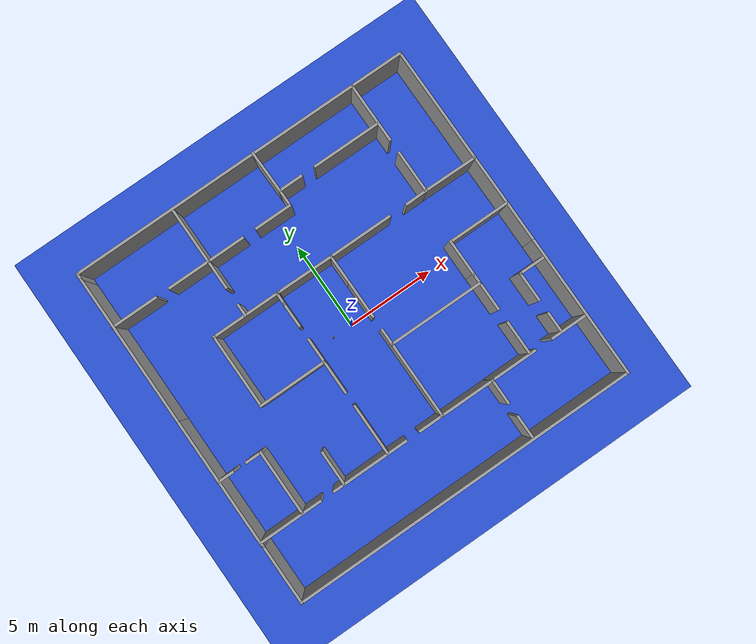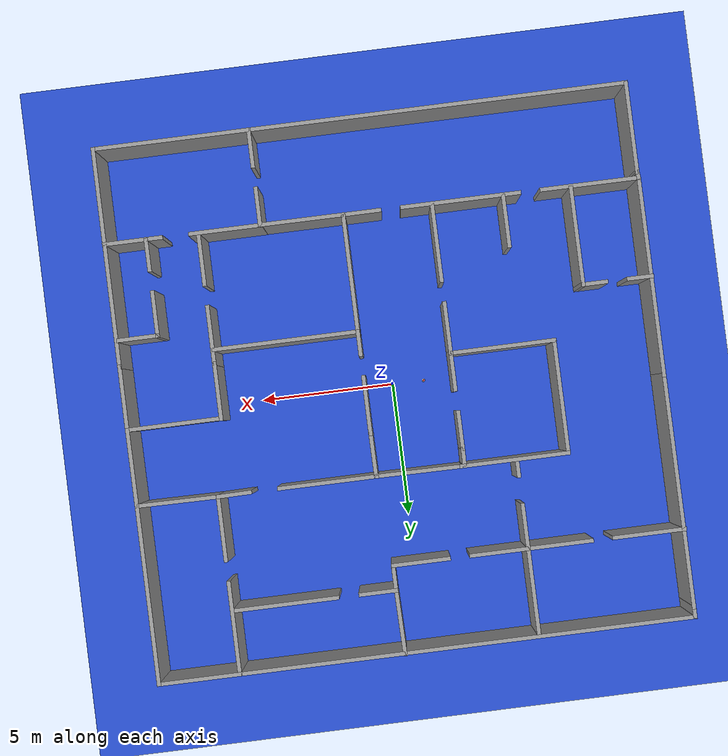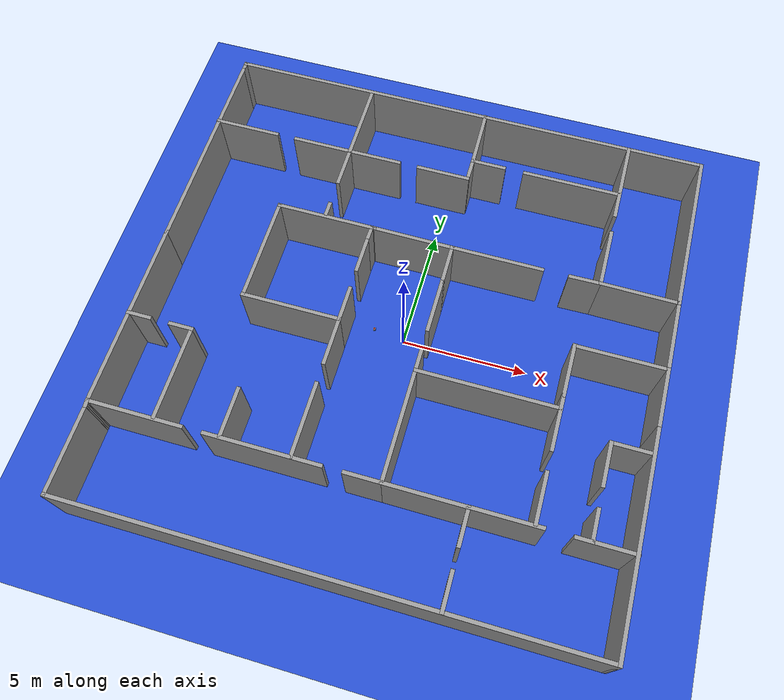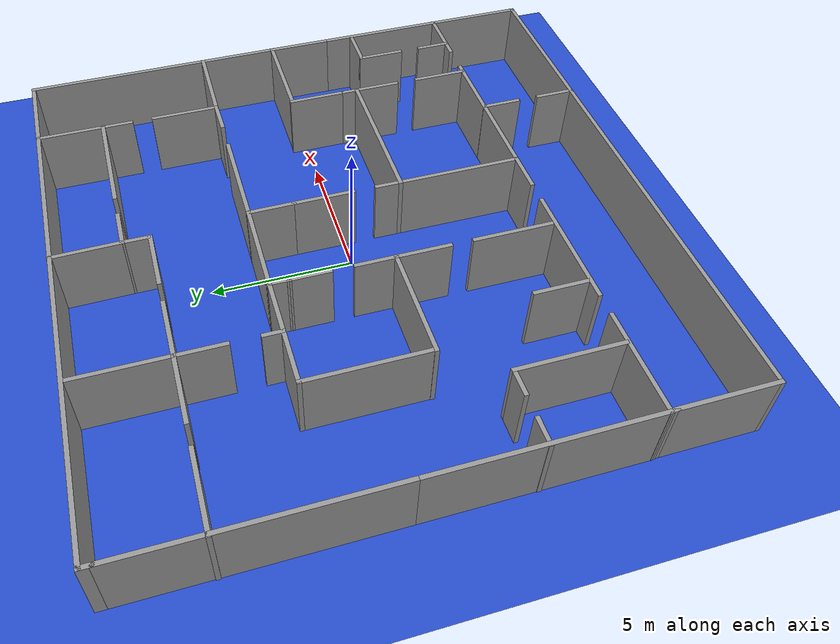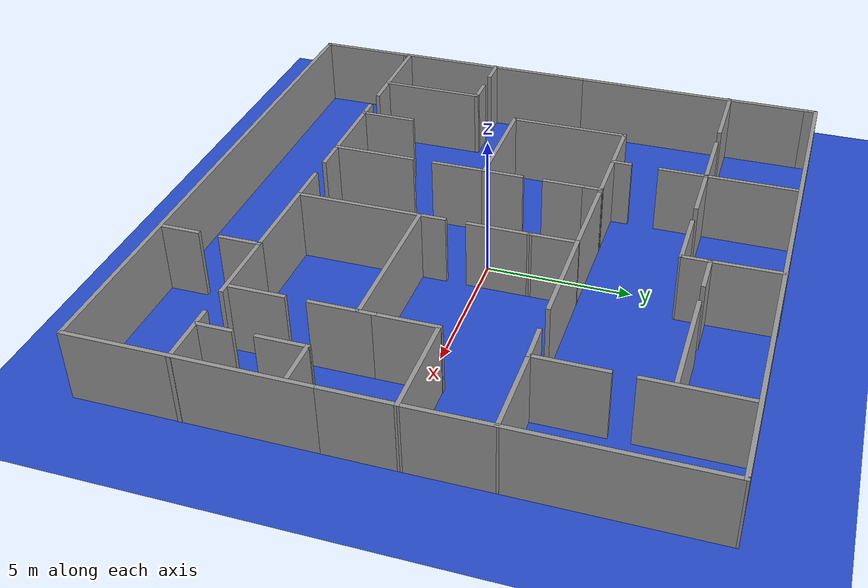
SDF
<sdf version="1.9">
 <world name="diff_drive">
  <physics name="default_physics" default="false" type="ode">
   <max_step_size>0.001</max_step_size>
   <real_time_factor>1</real_time_factor>
   <real_time_update_rate>1000</real_time_update_rate>
  </physics>
  <plugin name="ignition::gazebo::systems::Physics" filename="ignition-gazebo-physics-system"/>
  <plugin name="ignition::gazebo::systems::SceneBroadcaster" filename="ignition-gazebo-scene-broadcaster-system"/>
  <plugin name="gz::sim::systems::Sensors" filename="ignition-gazebo-sensors-system">
   <render_engine>ogre1</render_engine>
  </plugin>
  <gravity>0 0 -9.8</gravity>
  <magnetic_field>6e-06 2.3e-05 -4.2e-05</magnetic_field>
  <atmosphere type="adiabatic"/>
  <scene><ambient>0.4 0.4 0.4 1</ambient><background>0.7 0.7 0.7 1</background><shadows>true</shadows></scene>
  <model name="Untitled">
   <pose>-0.041619 -0.021097 0 0 -0 0</pose>
   <link name="Wall_101">
    <collision name="Wall_101_Collision">
     <geometry><box><size>7.5 0.15 2.5</size></box></geometry>
     <pose>0 0 1.25 0 -0 0</pose>
    </collision>
    <visual name="Wall_101_Visual">
     <pose>0 0 1.25 0 -0 0</pose>
     <geometry><box><size>7.5 0.15 2.5</size></box></geometry>
     <material>
      <script><uri>file://media/materials/scripts/gazebo.material</uri><name>Gazebo/Grey</name></script>
      <ambient>1 1 1 1</ambient>
     </material>
     <meta><layer>0</layer></meta>
    </visual>
    <pose>-9.92842 -2.70817 0 0 -0 1.5708</pose>
   </link>
   <link name="Wall_103">
    <collision name="Wall_103_Collision">
     <geometry><box><size>3.75 0.15 2.5</size></box></geometry>
     <pose>0 0 1.25 0 -0 0</pose>
    </collision>
    <visual name="Wall_103_Visual">
     <pose>0 0 1.25 0 -0 0</pose>
     <geometry><box><size>3.75 0.15 2.5</size></box></geometry>
     <material>
      <script><uri>file://media/materials/scripts/gazebo.material</uri><name>Gazebo/Grey</name></script>
      <ambient>1 1 1 1</ambient>
     </material>
     <meta><layer>0</layer></meta>
    </visual>
    <pose>-7.3963 -4.51708 0 0 -0 1.5708</pose>
   </link>
   <link name="Wall_104">
    <collision name="Wall_104_Collision">
     <geometry><box><size>1 0.15 2.5</size></box></geometry>
     <pose>0 0 1.25 0 -0 0</pose>
    </collision>
    <visual name="Wall_104_Visual">
     <pose>0 0 1.25 0 -0 0</pose>
     <geometry><box><size>1 0.15 2.5</size></box></geometry>
     <material>
      <script><uri>file://media/materials/scripts/gazebo.material</uri><name>Gazebo/Grey</name></script>
      <ambient>1 1 1 1</ambient>
     </material>
     <meta><layer>0</layer></meta>
    </visual>
    <pose>-7.8213 -2.71708 0 0 -0 3.14159</pose>
   </link>
   <link name="Wall_106">
    <collision name="Wall_106_Collision">
     <geometry><box><size>1 0.15 2.5</size></box></geometry>
     <pose>0 0 1.25 0 -0 0</pose>
    </collision>
    <visual name="Wall_106_Visual">
     <pose>0 0 1.25 0 -0 0</pose>
     <geometry><box><size>1 0.15 2.5</size></box></geometry>
     <material>
      <script><uri>file://media/materials/scripts/gazebo.material</uri><name>Gazebo/Grey</name></script>
      <ambient>1 1 1 1</ambient>
     </material>
     <meta><layer>0</layer></meta>
    </visual>
    <pose>-9.5213 -2.71708 0 0 -0 3.14159</pose>
   </link>
   <link name="Wall_110">
    <collision name="Wall_110_Collision">
     <geometry><box><size>8.75 0.15 2.5</size></box></geometry>
     <pose>0 0 1.25 0 -0 0</pose>
    </collision>
    <visual name="Wall_110_Visual">
     <pose>0 0 1.25 0 -0 0</pose>
     <geometry><box><size>8.75 0.15 2.5</size></box></geometry>
     <material>
      <script><uri>file://media/materials/scripts/gazebo.material</uri><name>Gazebo/Grey</name></script>
      <ambient>1 1 1 1</ambient>
     </material>
     <meta><layer>0</layer></meta>
    </visual>
    <pose>-9.92842 5.26683 0 0 -0 1.5708</pose>
   </link>
   <link name="Wall_113">
    <collision name="Wall_113_Collision">
     <geometry><box><size>0.5 0.15 2.5</size></box></geometry>
     <pose>0 0 1.25 0 -0 0</pose>
    </collision>
    <visual name="Wall_113_Visual">
     <pose>0 0 1.25 0 -0 0</pose>
     <geometry><box><size>0.5 0.15 2.5</size></box></geometry>
     <material>
      <script><uri>file://media/materials/scripts/gazebo.material</uri><name>Gazebo/Grey</name></script>
      <ambient>1 1 1 1</ambient>
     </material>
     <meta><layer>0</layer></meta>
    </visual>
    <pose>-9.92842 9.74183 0 0 -0 1.5708</pose>
   </link>
   <link name="Wall_115">
    <collision name="Wall_115_Collision">
     <geometry><box><size>20 0.15 2.5</size></box></geometry>
     <pose>0 0 1.25 0 -0 0</pose>
    </collision>
    <visual name="Wall_115_Visual">
     <pose>0 0 1.25 0 -0 0</pose>
     <geometry><box><size>20 0.15 2.5</size></box></geometry>
     <material>
      <script><uri>file://media/materials/scripts/gazebo.material</uri><name>Gazebo/Grey</name></script>
      <ambient>1 1 1 1</ambient>
     </material>
     <meta><layer>0</layer></meta>
    </visual>
    <pose>-0.003417 9.91683 0 0 -0 0</pose>
   </link>
   <link name="Wall_116">
    <collision name="Wall_116_Collision">
     <geometry><box><size>6.73451 0.15 2.5</size></box></geometry>
     <pose>0 0 1.25 0 -0 0</pose>
    </collision>
    <visual name="Wall_116_Visual">
     <pose>0 0 1.25 0 -0 0</pose>
     <geometry><box><size>6.73451 0.15 2.5</size></box></geometry>
     <material>
      <script><uri>file://media/materials/scripts/gazebo.material</uri><name>Gazebo/Grey</name></script>
      <ambient>1 1 1 1</ambient>
     </material>
     <meta><layer>0</layer></meta>
    </visual>
    <pose>9.92733 6.62458 0 0 -0 -1.56905</pose>
   </link>
   <link name="Wall_120">
    <collision name="Wall_120_Collision">
     <geometry><box><size>3.5 0.15 2.5</size></box></geometry>
     <pose>0 0 1.25 0 -0 0</pose>
    </collision>
    <visual name="Wall_120_Visual">
     <pose>0 0 1.25 0 -0 0</pose>
     <geometry><box><size>3.5 0.15 2.5</size></box></geometry>
     <material>
      <script><uri>file://media/materials/scripts/gazebo.material</uri><name>Gazebo/Grey</name></script>
      <ambient>1 1 1 1</ambient>
     </material>
     <meta><layer>0</layer></meta>
    </visual>
    <pose>6.92773 8.23568 0 0 -0 -1.5708</pose>
   </link>
   <link name="Wall_122">
    <collision name="Wall_122_Collision">
     <geometry><box><size>2.5 0.15 2.5</size></box></geometry>
     <pose>0 0 1.25 0 -0 0</pose>
    </collision>
    <visual name="Wall_122_Visual">
     <pose>0 0 1.25 0 -0 0</pose>
     <geometry><box><size>2.5 0.15 2.5</size></box></geometry>
     <material>
      <script><uri>file://media/materials/scripts/gazebo.material</uri><name>Gazebo/Grey</name></script>
      <ambient>1 1 1 1</ambient>
     </material>
     <meta><layer>0</layer></meta>
    </visual>
    <pose>6.92773 4.53568 0 0 -0 -1.5708</pose>
   </link>
   <link name="Wall_125">
    <collision name="Wall_125_Collision">
     <geometry><box><size>2.75 0.15 2.5</size></box></geometry>
     <pose>0 0 1.25 0 -0 0</pose>
    </collision>
    <visual name="Wall_125_Visual">
     <pose>0 0 1.25 0 -0 0</pose>
     <geometry><box><size>2.75 0.15 2.5</size></box></geometry>
     <material>
      <script><uri>file://media/materials/scripts/gazebo.material</uri><name>Gazebo/Grey</name></script>
      <ambient>1 1 1 1</ambient>
     </material>
     <meta><layer>0</layer></meta>
    </visual>
    <pose>-8.65702 6.67293 0 0 -0 0</pose>
   </link>
   <link name="Wall_127">
    <collision name="Wall_127_Collision">
     <geometry><box><size>2.5 0.15 2.5</size></box></geometry>
     <pose>0 0 1.25 0 -0 0</pose>
    </collision>
    <visual name="Wall_127_Visual">
     <pose>0 0 1.25 0 -0 0</pose>
     <geometry><box><size>2.5 0.15 2.5</size></box></geometry>
     <material>
      <script><uri>file://media/materials/scripts/gazebo.material</uri><name>Gazebo/Grey</name></script>
      <ambient>1 1 1 1</ambient>
     </material>
     <meta><layer>0</layer></meta>
    </visual>
    <pose>-5.33202 6.67293 0 0 -0 0</pose>
   </link>
   <link name="Wall_128">
    <collision name="Wall_128_Collision">
     <geometry><box><size>3.25 0.15 2.5</size></box></geometry>
     <pose>0 0 1.25 0 -0 0</pose>
    </collision>
    <visual name="Wall_128_Visual">
     <pose>0 0 1.25 0 -0 0</pose>
     <geometry><box><size>3.25 0.15 2.5</size></box></geometry>
     <material>
      <script><uri>file://media/materials/scripts/gazebo.material</uri><name>Gazebo/Grey</name></script>
      <ambient>1 1 1 1</ambient>
     </material>
     <meta><layer>0</layer></meta>
    </visual>
    <pose>-4.15702 8.22292 0 0 -0 1.5708</pose>
   </link>
   <link name="Wall_130">
    <collision name="Wall_130_Collision">
     <geometry><box><size>4 0.15 2.5</size></box></geometry>
     <pose>0 0 1.25 0 -0 0</pose>
    </collision>
    <visual name="Wall_130_Visual">
     <pose>0 0 1.25 0 -0 0</pose>
     <geometry><box><size>4 0.15 2.5</size></box></geometry>
     <material>
      <script><uri>file://media/materials/scripts/gazebo.material</uri><name>Gazebo/Grey</name></script>
      <ambient>1 1 1 1</ambient>
     </material>
     <meta><layer>0</layer></meta>
    </visual>
    <pose>4.96545 7.58545 0 0 -0 3.14159</pose>
   </link>
   <link name="Wall_132">
    <collision name="Wall_132_Collision">
     <geometry><box><size>1.46033 0.15 2.5</size></box></geometry>
     <pose>0 0 1.25 0 -0 0</pose>
    </collision>
    <visual name="Wall_132_Visual">
     <pose>0 0 1.25 0 -0 0</pose>
     <geometry><box><size>1.46033 0.15 2.5</size></box></geometry>
     <material>
      <script><uri>file://media/materials/scripts/gazebo.material</uri><name>Gazebo/Grey</name></script>
      <ambient>1 1 1 1</ambient>
     </material>
     <meta><layer>0</layer></meta>
    </visual>
    <pose>1.50869 7.58545 0 0 -0 3.14159</pose>
   </link>
   <link name="Wall_134">
    <collision name="Wall_134_Collision">
     <geometry><box><size>2.50015 0.15 2.5</size></box></geometry>
     <pose>0 0 1.25 0 -0 0</pose>
    </collision>
    <visual name="Wall_134_Visual">
     <pose>0 0 1.25 0 -0 0</pose>
     <geometry><box><size>2.50015 0.15 2.5</size></box></geometry>
     <material>
      <script><uri>file://media/materials/scripts/gazebo.material</uri><name>Gazebo/Grey</name></script>
      <ambient>1 1 1 1</ambient>
     </material>
     <meta><layer>0</layer></meta>
    </visual>
    <pose>0.833691 8.76045 0 0 -0 1.58768</pose>
   </link>
   <link name="Wall_137">
    <collision name="Wall_137_Collision">
     <geometry><box><size>2.25 0.15 2.5</size></box></geometry>
     <pose>0 0 1.25 0 -0 0</pose>
    </collision>
    <visual name="Wall_137_Visual">
     <pose>0 0 1.25 0 -0 0</pose>
     <geometry><box><size>2.25 0.15 2.5</size></box></geometry>
     <material>
      <script><uri>file://media/materials/scripts/gazebo.material</uri><name>Gazebo/Grey</name></script>
      <ambient>1 1 1 1</ambient>
     </material>
     <meta><layer>0</layer></meta>
    </visual>
    <pose>-3.10702 6.67293 0 0 -0 0</pose>
   </link>
   <link name="Wall_139">
    <collision name="Wall_139_Collision">
     <geometry><box><size>2.2 0.15 2.5</size></box></geometry>
     <pose>0 0 1.25 0 -0 0</pose>
    </collision>
    <visual name="Wall_139_Visual">
     <pose>0 0 1.25 0 -0 0</pose>
     <geometry><box><size>2.2 0.15 2.5</size></box></geometry>
     <material>
      <script><uri>file://media/materials/scripts/gazebo.material</uri><name>Gazebo/Grey</name></script>
      <ambient>1 1 1 1</ambient>
     </material>
     <meta><layer>0</layer></meta>
    </visual>
    <pose>-0.182024 6.67293 0 0 -0 0</pose>
   </link>
   <link name="Wall_142">
    <collision name="Wall_142_Collision">
     <geometry><box><size>1 0.15 2.5</size></box></geometry>
     <pose>0 0 1.25 0 -0 0</pose>
    </collision>
    <visual name="Wall_142_Visual">
     <pose>0 0 1.25 0 -0 0</pose>
     <geometry><box><size>1 0.15 2.5</size></box></geometry>
     <material>
      <script><uri>file://media/materials/scripts/gazebo.material</uri><name>Gazebo/Grey</name></script>
      <ambient>1 1 1 1</ambient>
     </material>
     <meta><layer>0</layer></meta>
    </visual>
    <pose>0.853529 7.16045 0 0 -0 -1.5708</pose>
   </link>
   <link name="Wall_144">
    <collision name="Wall_144_Collision">
     <geometry><box><size>1.75 0.15 2.5</size></box></geometry>
     <pose>0 0 1.25 0 -0 0</pose>
    </collision>
    <visual name="Wall_144_Visual">
     <pose>0 0 1.25 0 -0 0</pose>
     <geometry><box><size>1.75 0.15 2.5</size></box></geometry>
     <material>
      <script><uri>file://media/materials/scripts/gazebo.material</uri><name>Gazebo/Grey</name></script>
      <ambient>1 1 1 1</ambient>
     </material>
     <meta><layer>0</layer></meta>
    </visual>
    <pose>-4.15702 5.87292 0 0 -0 -1.5708</pose>
   </link>
   <link name="Wall_146">
    <collision name="Wall_146_Collision">
     <geometry><box><size>0.75 0.15 2.5</size></box></geometry>
     <pose>0 0 1.25 0 -0 0</pose>
    </collision>
    <visual name="Wall_146_Visual">
     <pose>0 0 1.25 0 -0 0</pose>
     <geometry><box><size>0.75 0.15 2.5</size></box></geometry>
     <material>
      <script><uri>file://media/materials/scripts/gazebo.material</uri><name>Gazebo/Grey</name></script>
      <ambient>1 1 1 1</ambient>
     </material>
     <meta><layer>0</layer></meta>
    </visual>
    <pose>-4.15702 3.67292 0 0 -0 -1.5708</pose>
   </link>
   <link name="Wall_148">
    <collision name="Wall_148_Collision">
     <geometry><box><size>3.75 0.15 2.5</size></box></geometry>
     <pose>0 0 1.25 0 -0 0</pose>
    </collision>
    <visual name="Wall_148_Visual">
     <pose>0 0 1.25 0 -0 0</pose>
     <geometry><box><size>3.75 0.15 2.5</size></box></geometry>
     <material>
      <script><uri>file://media/materials/scripts/gazebo.material</uri><name>Gazebo/Grey</name></script>
      <ambient>1 1 1 1</ambient>
     </material>
     <meta><layer>0</layer></meta>
    </visual>
    <pose>2.84858 3.34383 0 0 -0 0</pose>
   </link>
   <link name="Wall_150">
    <collision name="Wall_150_Collision">
     <geometry><box><size>1.32927 0.15 2.5</size></box></geometry>
     <pose>0 0 1.25 0 -0 0</pose>
    </collision>
    <visual name="Wall_150_Visual">
     <pose>0 0 1.25 0 -0 0</pose>
     <geometry><box><size>1.32927 0.15 2.5</size></box></geometry>
     <material>
      <script><uri>file://media/materials/scripts/gazebo.material</uri><name>Gazebo/Grey</name></script>
      <ambient>1 1 1 1</ambient>
     </material>
     <meta><layer>0</layer></meta>
    </visual>
    <pose>6.33816 3.35225 0 0 -0 0.014288</pose>
   </link>
   <link name="Wall_151">
    <collision name="Wall_151_Collision">
     <geometry><box><size>3.15549 0.15 2.5</size></box></geometry>
     <pose>0 0 1.25 0 -0 0</pose>
    </collision>
    <visual name="Wall_151_Visual">
     <pose>0 0 1.25 0 -0 0</pose>
     <geometry><box><size>3.15549 0.15 2.5</size></box></geometry>
     <material>
      <script><uri>file://media/materials/scripts/gazebo.material</uri><name>Gazebo/Grey</name></script>
      <ambient>1 1 1 1</ambient>
     </material>
     <meta><layer>0</layer></meta>
    </visual>
    <pose>8.43041 3.3465 0 0 -0 -0.009432</pose>
   </link>
   <link name="Wall_25">
    <collision name="Wall_25_Collision">
     <geometry><box><size>20 0.15 2.5</size></box></geometry>
     <pose>0 0 1.25 0 -0 0</pose>
    </collision>
    <visual name="Wall_25_Visual">
     <pose>0 0 1.25 0 -0 0</pose>
     <geometry><box><size>20 0.15 2.5</size></box></geometry>
     <material>
      <script><uri>file://media/materials/scripts/gazebo.material</uri><name>Gazebo/Grey</name></script>
      <ambient>1 1 1 1</ambient>
     </material>
     <meta><layer>0</layer></meta>
    </visual>
    <pose>0.020014 -9.93661 0 0 -0 0</pose>
   </link>
   <link name="Wall_27">
    <collision name="Wall_27_Collision">
     <geometry><box><size>8.25 0.15 2.5</size></box></geometry>
     <pose>0 0 1.25 0 -0 0</pose>
    </collision>
    <visual name="Wall_27_Visual">
     <pose>0 0 1.25 0 -0 0</pose>
     <geometry><box><size>8.25 0.15 2.5</size></box></geometry>
     <material>
      <script><uri>file://media/materials/scripts/gazebo.material</uri><name>Gazebo/Grey</name></script>
      <ambient>1 1 1 1</ambient>
     </material>
     <meta><layer>0</layer></meta>
    </visual>
    <pose>9.94501 -5.88661 0 0 -0 1.5708</pose>
   </link>
   <link name="Wall_29">
    <collision name="Wall_29_Collision">
     <geometry><box><size>1.5 0.15 2.5</size></box></geometry>
     <pose>0 0 1.25 0 -0 0</pose>
    </collision>
    <visual name="Wall_29_Visual">
     <pose>0 0 1.25 0 -0 0</pose>
     <geometry><box><size>1.5 0.15 2.5</size></box></geometry>
     <material>
      <script><uri>file://media/materials/scripts/gazebo.material</uri><name>Gazebo/Grey</name></script>
      <ambient>1 1 1 1</ambient>
     </material>
     <meta><layer>0</layer></meta>
    </visual>
    <pose>4.15702 -9.26161 0 0 -0 1.5708</pose>
   </link>
   <link name="Wall_31">
    <collision name="Wall_31_Collision">
     <geometry><box><size>1.49705 0.15 2.5</size></box></geometry>
     <pose>0 0 1.25 0 -0 0</pose>
    </collision>
    <visual name="Wall_31_Visual">
     <pose>0 0 1.25 0 -0 0</pose>
     <geometry><box><size>1.49705 0.15 2.5</size></box></geometry>
     <material>
      <script><uri>file://media/materials/scripts/gazebo.material</uri><name>Gazebo/Grey</name></script>
      <ambient>1 1 1 1</ambient>
     </material>
     <meta><layer>0</layer></meta>
    </visual>
    <pose>4.1585 -7.06309 0 0 -0 1.5686</pose>
   </link>
   <link name="Wall_33">
    <collision name="Wall_33_Collision">
     <geometry><box><size>2.75 0.15 2.5</size></box></geometry>
     <pose>0 0 1.25 0 -0 0</pose>
    </collision>
    <visual name="Wall_33_Visual">
     <pose>0 0 1.25 0 -0 0</pose>
     <geometry><box><size>2.75 0.15 2.5</size></box></geometry>
     <material>
      <script><uri>file://media/materials/scripts/gazebo.material</uri><name>Gazebo/Grey</name></script>
      <ambient>1 1 1 1</ambient>
     </material>
     <meta><layer>0</layer></meta>
    </visual>
    <pose>5.45129 -6.38087 0 0 -0 0</pose>
   </link>
   <link name="Wall_35">
    <collision name="Wall_35_Collision">
     <geometry><box><size>2.25 0.15 2.5</size></box></geometry>
     <pose>0 0 1.25 0 -0 0</pose>
    </collision>
    <visual name="Wall_35_Visual">
     <pose>0 0 1.25 0 -0 0</pose>
     <geometry><box><size>2.25 0.15 2.5</size></box></geometry>
     <material>
      <script><uri>file://media/materials/scripts/gazebo.material</uri><name>Gazebo/Grey</name></script>
      <ambient>1 1 1 1</ambient>
     </material>
     <meta><layer>0</layer></meta>
    </visual>
    <pose>8.90702 -6.38661 0 0 -0 0</pose>
   </link>
   <link name="Wall_37">
    <collision name="Wall_37_Collision">
     <geometry><box><size>1.25 0.15 2.5</size></box></geometry>
     <pose>0 0 1.25 0 -0 0</pose>
    </collision>
    <visual name="Wall_37_Visual">
     <pose>0 0 1.25 0 -0 0</pose>
     <geometry><box><size>1.25 0.15 2.5</size></box></geometry>
     <material>
      <script><uri>file://media/materials/scripts/gazebo.material</uri><name>Gazebo/Grey</name></script>
      <ambient>1 1 1 1</ambient>
     </material>
     <meta><layer>0</layer></meta>
    </visual>
    <pose>8.41023 -5.80349 0 0 -0 1.5708</pose>
   </link>
   <link name="Wall_39">
    <collision name="Wall_39_Collision">
     <geometry><box><size>1.75 0.15 2.5</size></box></geometry>
     <pose>0 0 1.25 0 -0 0</pose>
    </collision>
    <visual name="Wall_39_Visual">
     <pose>0 0 1.25 0 -0 0</pose>
     <geometry><box><size>1.75 0.15 2.5</size></box></geometry>
     <material>
      <script><uri>file://media/materials/scripts/gazebo.material</uri><name>Gazebo/Grey</name></script>
      <ambient>1 1 1 1</ambient>
     </material>
     <meta><layer>0</layer></meta>
    </visual>
    <pose>8.41023 -3.60349 0 0 -0 1.5708</pose>
   </link>
   <link name="Wall_40">
    <collision name="Wall_40_Collision">
     <geometry><box><size>1.6 0.15 2.5</size></box></geometry>
     <pose>0 0 1.25 0 -0 0</pose>
    </collision>
    <visual name="Wall_40_Visual">
     <pose>0 0 1.25 0 -0 0</pose>
     <geometry><box><size>1.6 0.15 2.5</size></box></geometry>
     <material>
      <script><uri>file://media/materials/scripts/gazebo.material</uri><name>Gazebo/Grey</name></script>
      <ambient>1 1 1 1</ambient>
     </material>
     <meta><layer>0</layer></meta>
    </visual>
    <pose>9.13523 -2.80349 0 0 -0 0</pose>
   </link>
   <link name="Wall_42">
    <collision name="Wall_42_Collision">
     <geometry><box><size>2 0.15 2.5</size></box></geometry>
     <pose>0 0 1.25 0 -0 0</pose>
    </collision>
    <visual name="Wall_42_Visual">
     <pose>0 0 1.25 0 -0 0</pose>
     <geometry><box><size>2 0.15 2.5</size></box></geometry>
     <material>
      <script><uri>file://media/materials/scripts/gazebo.material</uri><name>Gazebo/Grey</name></script>
      <ambient>1 1 1 1</ambient>
     </material>
     <meta><layer>0</layer></meta>
    </visual>
    <pose>6.46332 -5.39614 0 0 -0 1.5708</pose>
   </link>
   <link name="Wall_44">
    <collision name="Wall_44_Collision">
     <geometry><box><size>2.25 0.15 2.5</size></box></geometry>
     <pose>0 0 1.25 0 -0 0</pose>
    </collision>
    <visual name="Wall_44_Visual">
     <pose>0 0 1.25 0 -0 0</pose>
     <geometry><box><size>2.25 0.15 2.5</size></box></geometry>
     <material>
      <script><uri>file://media/materials/scripts/gazebo.material</uri><name>Gazebo/Grey</name></script>
      <ambient>1 1 1 1</ambient>
     </material>
     <meta><layer>0</layer></meta>
    </visual>
    <pose>6.46332 -2.57114 0 0 -0 1.5708</pose>
   </link>
   <link name="Wall_50">
    <collision name="Wall_50_Collision">
     <geometry><box><size>5.5 0.15 2.5</size></box></geometry>
     <pose>0 0 1.25 0 -0 0</pose>
    </collision>
    <visual name="Wall_50_Visual">
     <pose>0 0 1.25 0 -0 0</pose>
     <geometry><box><size>5.5 0.15 2.5</size></box></geometry>
     <material>
      <script><uri>file://media/materials/scripts/gazebo.material</uri><name>Gazebo/Grey</name></script>
      <ambient>1 1 1 1</ambient>
     </material>
     <meta><layer>0</layer></meta>
    </visual>
    <pose>3.74658 -2.03317 0 0 -0 3.14159</pose>
   </link>
   <link name="Wall_51">
    <collision name="Wall_51_Collision">
     <geometry><box><size>4.5 0.15 2.5</size></box></geometry>
     <pose>0 0 1.25 0 -0 0</pose>
    </collision>
    <visual name="Wall_51_Visual">
     <pose>0 0 1.25 0 -0 0</pose>
     <geometry><box><size>4.5 0.15 2.5</size></box></geometry>
     <material>
      <script><uri>file://media/materials/scripts/gazebo.material</uri><name>Gazebo/Grey</name></script>
      <ambient>1 1 1 1</ambient>
     </material>
     <meta><layer>0</layer></meta>
    </visual>
    <pose>1.07158 -4.20817 0 0 -0 -1.5708</pose>
   </link>
   <link name="Wall_52">
    <collision name="Wall_52_Collision">
     <geometry><box><size>3.23841 0.15 2.5</size></box></geometry>
     <pose>0 0 1.25 0 -0 0</pose>
    </collision>
    <visual name="Wall_52_Visual">
     <pose>0 0 1.25 0 -0 0</pose>
     <geometry><box><size>3.23841 0.15 2.5</size></box></geometry>
     <material>
      <script><uri>file://media/materials/scripts/gazebo.material</uri><name>Gazebo/Grey</name></script>
      <ambient>1 1 1 1</ambient>
     </material>
     <meta><layer>0</layer></meta>
    </visual>
    <pose>2.61578 -6.38637 0 0 -0 -0.002071</pose>
   </link>
   <link name="Wall_54">
    <collision name="Wall_54_Collision">
     <geometry><box><size>2.5 0.15 2.5</size></box></geometry>
     <pose>0 0 1.25 0 -0 0</pose>
    </collision>
    <visual name="Wall_54_Visual">
     <pose>0 0 1.25 0 -0 0</pose>
     <geometry><box><size>2.5 0.15 2.5</size></box></geometry>
     <material>
      <script><uri>file://media/materials/scripts/gazebo.material</uri><name>Gazebo/Grey</name></script>
      <ambient>1 1 1 1</ambient>
     </material>
     <meta><layer>0</layer></meta>
    </visual>
    <pose>9.94501 -0.661611 0 0 -0 1.5708</pose>
   </link>
   <link name="Wall_55">
    <collision name="Wall_55_Collision">
     <geometry><box><size>3.5 0.15 2.5</size></box></geometry>
     <pose>0 0 1.25 0 -0 0</pose>
    </collision>
    <visual name="Wall_55_Visual">
     <pose>0 0 1.25 0 -0 0</pose>
     <geometry><box><size>3.5 0.15 2.5</size></box></geometry>
     <material>
      <script><uri>file://media/materials/scripts/gazebo.material</uri><name>Gazebo/Grey</name></script>
      <ambient>1 1 1 1</ambient>
     </material>
     <meta><layer>0</layer></meta>
    </visual>
    <pose>8.27001 0.513389 0 0 -0 3.14159</pose>
   </link>
   <link name="Wall_58">
    <collision name="Wall_58_Collision">
     <geometry><box><size>2.2 0.15 2.5</size></box></geometry>
     <pose>0 0 1.25 0 -0 0</pose>
    </collision>
    <visual name="Wall_58_Visual">
     <pose>0 0 1.25 0 -0 0</pose>
     <geometry><box><size>2.2 0.15 2.5</size></box></geometry>
     <material>
      <script><uri>file://media/materials/scripts/gazebo.material</uri><name>Gazebo/Grey</name></script>
      <ambient>1 1 1 1</ambient>
     </material>
     <meta><layer>0</layer></meta>
    </visual>
    <pose>6.46332 -0.496143 0 0 -0 1.5708</pose>
   </link>
   <link name="Wall_60">
    <collision name="Wall_60_Collision">
     <geometry><box><size>1.5 0.15 2.5</size></box></geometry>
     <pose>0 0 1.25 0 -0 0</pose>
    </collision>
    <visual name="Wall_60_Visual">
     <pose>0 0 1.25 0 -0 0</pose>
     <geometry><box><size>1.5 0.15 2.5</size></box></geometry>
     <material>
      <script><uri>file://media/materials/scripts/gazebo.material</uri><name>Gazebo/Grey</name></script>
      <ambient>1 1 1 1</ambient>
     </material>
     <meta><layer>0</layer></meta>
    </visual>
    <pose>0.396583 -6.38317 0 0 -0 3.14159</pose>
   </link>
   <link name="Wall_62">
    <collision name="Wall_62_Collision">
     <geometry><box><size>4.5 0.15 2.5</size></box></geometry>
     <pose>0 0 1.25 0 -0 0</pose>
    </collision>
    <visual name="Wall_62_Visual">
     <pose>0 0 1.25 0 -0 0</pose>
     <geometry><box><size>4.5 0.15 2.5</size></box></geometry>
     <material>
      <script><uri>file://media/materials/scripts/gazebo.material</uri><name>Gazebo/Grey</name></script>
      <ambient>1 1 1 1</ambient>
     </material>
     <meta><layer>0</layer></meta>
    </visual>
    <pose>-3.30342 -6.38317 0 0 -0 3.14159</pose>
   </link>
   <link name="Wall_64">
    <collision name="Wall_64_Collision">
     <geometry><box><size>1 0.15 2.5</size></box></geometry>
     <pose>0 0 1.25 0 -0 0</pose>
    </collision>
    <visual name="Wall_64_Visual">
     <pose>0 0 1.25 0 -0 0</pose>
     <geometry><box><size>1 0.15 2.5</size></box></geometry>
     <material>
      <script><uri>file://media/materials/scripts/gazebo.material</uri><name>Gazebo/Grey</name></script>
      <ambient>1 1 1 1</ambient>
     </material>
     <meta><layer>0</layer></meta>
    </visual>
    <pose>1.07158 -1.60817 0 0 -0 1.5708</pose>
   </link>
   <link name="Wall_67">
    <collision name="Wall_67_Collision">
     <geometry><box><size>2.25 0.15 2.5</size></box></geometry>
     <pose>0 0 1.25 0 -0 0</pose>
    </collision>
    <visual name="Wall_67_Visual">
     <pose>0 0 1.25 0 -0 0</pose>
     <geometry><box><size>2.25 0.15 2.5</size></box></geometry>
     <material>
      <script><uri>file://media/materials/scripts/gazebo.material</uri><name>Gazebo/Grey</name></script>
      <ambient>1 1 1 1</ambient>
     </material>
     <meta><layer>0</layer></meta>
    </visual>
    <pose>1.07158 0.716827 0 0 -0 1.5708</pose>
   </link>
   <link name="Wall_68">
    <collision name="Wall_68_Collision">
     <geometry><box><size>1.72717 0.15 2.5</size></box></geometry>
     <pose>0 0 1.25 0 -0 0</pose>
    </collision>
    <visual name="Wall_68_Visual">
     <pose>0 0 1.25 0 -0 0</pose>
     <geometry><box><size>1.72717 0.15 2.5</size></box></geometry>
     <material>
      <script><uri>file://media/materials/scripts/gazebo.material</uri><name>Gazebo/Grey</name></script>
      <ambient>1 1 1 1</ambient>
     </material>
     <meta><layer>0</layer></meta>
    </visual>
    <pose>1.06583 2.55533 0 0 -0 1.57809</pose>
   </link>
   <link name="Wall_70">
    <collision name="Wall_70_Collision">
     <geometry><box><size>2.96904 0.15 2.5</size></box></geometry>
     <pose>0 0 1.25 0 -0 0</pose>
    </collision>
    <visual name="Wall_70_Visual">
     <pose>0 0 1.25 0 -0 0</pose>
     <geometry><box><size>2.96904 0.15 2.5</size></box></geometry>
     <material>
      <script><uri>file://media/materials/scripts/gazebo.material</uri><name>Gazebo/Grey</name></script>
      <ambient>1 1 1 1</ambient>
     </material>
     <meta><layer>0</layer></meta>
    </visual>
    <pose>9.93905 1.92286 0 0 -0 -1.56656</pose>
   </link>
   <link name="Wall_72">
    <collision name="Wall_72_Collision">
     <geometry><box><size>3 0.15 2.5</size></box></geometry>
     <pose>0 0 1.25 0 -0 0</pose>
    </collision>
    <visual name="Wall_72_Visual">
     <pose>0 0 1.25 0 -0 0</pose>
     <geometry><box><size>3 0.15 2.5</size></box></geometry>
     <material>
      <script><uri>file://media/materials/scripts/gazebo.material</uri><name>Gazebo/Grey</name></script>
      <ambient>1 1 1 1</ambient>
     </material>
     <meta><layer>0</layer></meta>
    </visual>
    <pose>-2.23287 -4.9408 0 0 -0 1.5708</pose>
   </link>
   <link name="Wall_76">
    <collision name="Wall_76_Collision">
     <geometry><box><size>2 0.15 2.5</size></box></geometry>
     <pose>0 0 1.25 0 -0 0</pose>
    </collision>
    <visual name="Wall_76_Visual">
     <pose>0 0 1.25 0 -0 0</pose>
     <geometry><box><size>2 0.15 2.5</size></box></geometry>
     <material>
      <script><uri>file://media/materials/scripts/gazebo.material</uri><name>Gazebo/Grey</name></script>
      <ambient>1 1 1 1</ambient>
     </material>
     <meta><layer>0</layer></meta>
    </visual>
    <pose>-2.23287 -1.7408 0 0 -0 1.5708</pose>
   </link>
   <link name="Wall_77">
    <collision name="Wall_77_Collision">
     <geometry><box><size>4 0.15 2.5</size></box></geometry>
     <pose>0 0 1.25 0 -0 0</pose>
    </collision>
    <visual name="Wall_77_Visual">
     <pose>0 0 1.25 0 -0 0</pose>
     <geometry><box><size>4 0.15 2.5</size></box></geometry>
     <material>
      <script><uri>file://media/materials/scripts/gazebo.material</uri><name>Gazebo/Grey</name></script>
      <ambient>1 1 1 1</ambient>
     </material>
     <meta><layer>0</layer></meta>
    </visual>
    <pose>-4.15787 -0.815797 0 0 -0 3.14159</pose>
   </link>
   <link name="Wall_79">
    <collision name="Wall_79_Collision">
     <geometry><box><size>1.5 0.15 2.5</size></box></geometry>
     <pose>0 0 1.25 0 -0 0</pose>
    </collision>
    <visual name="Wall_79_Visual">
     <pose>0 0 1.25 0 -0 0</pose>
     <geometry><box><size>1.5 0.15 2.5</size></box></geometry>
     <material>
      <script><uri>file://media/materials/scripts/gazebo.material</uri><name>Gazebo/Grey</name></script>
      <ambient>1 1 1 1</ambient>
     </material>
     <meta><layer>0</layer></meta>
    </visual>
    <pose>-2.23287 -0.140797 0 0 -0 1.5708</pose>
   </link>
   <link name="Wall_81">
    <collision name="Wall_81_Collision">
     <geometry><box><size>1.5 0.15 2.5</size></box></geometry>
     <pose>0 0 1.25 0 -0 0</pose>
    </collision>
    <visual name="Wall_81_Visual">
     <pose>0 0 1.25 0 -0 0</pose>
     <geometry><box><size>1.5 0.15 2.5</size></box></geometry>
     <material>
      <script><uri>file://media/materials/scripts/gazebo.material</uri><name>Gazebo/Grey</name></script>
      <ambient>1 1 1 1</ambient>
     </material>
     <meta><layer>0</layer></meta>
    </visual>
    <pose>-2.23287 2.0592 0 0 -0 1.5708</pose>
   </link>
   <link name="Wall_85">
    <collision name="Wall_85_Collision">
     <geometry><box><size>3.31908 0.15 2.5</size></box></geometry>
     <pose>0 0 1.25 0 -0 0</pose>
    </collision>
    <visual name="Wall_85_Visual">
     <pose>0 0 1.25 0 -0 0</pose>
     <geometry><box><size>3.31908 0.15 2.5</size></box></geometry>
     <material>
      <script><uri>file://media/materials/scripts/gazebo.material</uri><name>Gazebo/Grey</name></script>
      <ambient>1 1 1 1</ambient>
     </material>
     <meta><layer>0</layer></meta>
    </visual>
    <pose>-0.535917 3.35533 0 0 -0 3.13434</pose>
   </link>
   <link name="Wall_86">
    <collision name="Wall_86_Collision">
     <geometry><box><size>0.25 0.15 2.5</size></box></geometry>
     <pose>0 0 1.25 0 -0 0</pose>
    </collision>
    <visual name="Wall_86_Visual">
     <pose>0 0 1.25 0 -0 0</pose>
     <geometry><box><size>0.25 0.15 2.5</size></box></geometry>
     <material>
      <script><uri>file://media/materials/scripts/gazebo.material</uri><name>Gazebo/Grey</name></script>
      <ambient>1 1 1 1</ambient>
     </material>
     <meta><layer>0</layer></meta>
    </visual>
    <pose>-2.15892 3.36683 0 0 -0 3.14159</pose>
   </link>
   <link name="Wall_88">
    <collision name="Wall_88_Collision">
     <geometry><box><size>0.782747 0.15 2.5</size></box></geometry>
     <pose>0 0 1.25 0 -0 0</pose>
    </collision>
    <visual name="Wall_88_Visual">
     <pose>0 0 1.25 0 -0 0</pose>
     <geometry><box><size>0.782747 0.15 2.5</size></box></geometry>
     <material>
      <script><uri>file://media/materials/scripts/gazebo.material</uri><name>Gazebo/Grey</name></script>
      <ambient>1 1 1 1</ambient>
     </material>
     <meta><layer>0</layer></meta>
    </visual>
    <pose>-2.22664 3.05051 0 0 -0 1.55111</pose>
   </link>
   <link name="Wall_90">
    <collision name="Wall_90_Collision">
     <geometry><box><size>4 0.15 2.5</size></box></geometry>
     <pose>0 0 1.25 0 -0 0</pose>
    </collision>
    <visual name="Wall_90_Visual">
     <pose>0 0 1.25 0 -0 0</pose>
     <geometry><box><size>4 0.15 2.5</size></box></geometry>
     <material>
      <script><uri>file://media/materials/scripts/gazebo.material</uri><name>Gazebo/Grey</name></script>
      <ambient>1 1 1 1</ambient>
     </material>
     <meta><layer>0</layer></meta>
    </visual>
    <pose>-4.14542 3.36683 0 0 -0 3.14159</pose>
   </link>
   <link name="Wall_91">
    <collision name="Wall_91_Collision">
     <geometry><box><size>4.25 0.15 2.5</size></box></geometry>
     <pose>0 0 1.25 0 -0 0</pose>
    </collision>
    <visual name="Wall_91_Visual">
     <pose>0 0 1.25 0 -0 0</pose>
     <geometry><box><size>4.25 0.15 2.5</size></box></geometry>
     <material>
      <script><uri>file://media/materials/scripts/gazebo.material</uri><name>Gazebo/Grey</name></script>
      <ambient>1 1 1 1</ambient>
     </material>
     <meta><layer>0</layer></meta>
    </visual>
    <pose>-6.07042 1.31683 0 0 -0 -1.5708</pose>
   </link>
   <link name="Wall_93">
    <collision name="Wall_93_Collision">
     <geometry><box><size>3.5 0.15 2.5</size></box></geometry>
     <pose>0 0 1.25 0 -0 0</pose>
    </collision>
    <visual name="Wall_93_Visual">
     <pose>0 0 1.25 0 -0 0</pose>
     <geometry><box><size>3.5 0.15 2.5</size></box></geometry>
     <material>
      <script><uri>file://media/materials/scripts/gazebo.material</uri><name>Gazebo/Grey</name></script>
      <ambient>1 1 1 1</ambient>
     </material>
     <meta><layer>0</layer></meta>
    </visual>
    <pose>-9.90499 -8.26161 0 0 -0 1.5708</pose>
   </link>
   <link name="Wall_96">
    <collision name="Wall_96_Collision">
     <geometry><box><size>3.75 0.15 2.5</size></box></geometry>
     <pose>0 0 1.25 0 -0 0</pose>
    </collision>
    <visual name="Wall_96_Visual">
     <pose>0 0 1.25 0 -0 0</pose>
     <geometry><box><size>3.75 0.15 2.5</size></box></geometry>
     <material>
      <script><uri>file://media/materials/scripts/gazebo.material</uri><name>Gazebo/Grey</name></script>
      <ambient>1 1 1 1</ambient>
     </material>
     <meta><layer>0</layer></meta>
    </visual>
    <pose>-8.12842 -6.38317 0 0 -0 3.14159</pose>
   </link>
   <link name="Wall_97">
    <collision name="Wall_97_Collision">
     <geometry><box><size>0.354783 0.15 2.5</size></box></geometry>
     <pose>0 0 1.25 0 -0 0</pose>
    </collision>
    <visual name="Wall_97_Visual">
     <pose>0 0 1.25 0 -0 0</pose>
     <geometry><box><size>0.354783 0.15 2.5</size></box></geometry>
     <material>
      <script><uri>file://media/materials/scripts/gazebo.material</uri><name>Gazebo/Grey</name></script>
      <ambient>1 1 1 1</ambient>
     </material>
     <meta><layer>0</layer></meta>
    </visual>
    <pose>-9.9167 -6.48489 0 0 -0 -1.45612</pose>
   </link>
   <link name="Wall_99">
    <collision name="Wall_99_Collision">
     <geometry><box><size>2 0.15 2.5</size></box></geometry>
     <pose>0 0 1.25 0 -0 0</pose>
    </collision>
    <visual name="Wall_99_Visual">
     <pose>0 0 1.25 0 -0 0</pose>
     <geometry><box><size>2 0.15 2.5</size></box></geometry>
     <material>
      <script><uri>file://media/materials/scripts/gazebo.material</uri><name>Gazebo/Grey</name></script>
      <ambient>1 1 1 1</ambient>
     </material>
     <meta><layer>0</layer></meta>
    </visual>
    <pose>-4.87751 -5.40927 0 0 -0 1.5708</pose>
   </link>
   <static>1</static>
  </model>
  <model name="ground_plane">
   <static>true</static>
   <link name="link">
    <collision name="collision">
     <geometry><plane><normal>0 0 1</normal><size>100 100</size></plane></geometry>
     <surface><friction><ode><mu>100</mu><mu2>50</mu2></ode></friction></surface>
    </collision>
    <visual name="visual">
     <cast_shadows>false</cast_shadows>
     <geometry><plane><normal>0 0 1</normal><size>100 100</size></plane></geometry>
     <material>
      <script><uri>file://media/materials/scripts/gazebo.material</uri><name>Gazebo/Blue</name></script>
      <shader type="pixel"><normal_map>__default__</normal_map></shader>
      <ambient>1 1 1 1</ambient>
      <diffuse>1 1 1 1</diffuse>
      <specular>0 0 0 1</specular>
      <emissive>0 0 0 1</emissive>
     </material>
    </visual>
    <inertial>
     <mass>1</mass>
     <inertia><ixx>1</ixx><ixy>0</ixy><ixz>0</ixz><iyy>1</iyy><iyz>0</iyz><izz>1</izz></inertia>
    </inertial>
   </link>
  </model>
  <include>
   <uri>file://src/robot_sim/gazebo/kris_robot</uri>
   <name>kris_robot</name>
   <pose>0 0 0.5 0 -0 3.14</pose>
  </include>
  <include>
   <uri>file://src/robot_sim/gazebo/kris_robot1</uri>
   <name>kris_robot1</name>
   <pose>-1.2 0 0.5 0 -0 3.14</pose>
  </include>
  <light name="sun" type="directional">
   <pose>0 0 10 0 -0 0</pose>
   <intensity>1</intensity>
   <direction>-0.5 0.1 -0.9</direction>
   <diffuse>0.8 0.8 0.8 1</diffuse>
   <specular>0.2 0.2 0.2 1</specular>
   <attenuation>
    <range>1000</range>
    <linear>0.01</linear>
    <constant>0.90000000000000002</constant>
    <quadratic>0.001</quadratic>
   </attenuation>
   <spot><inner_angle>0</inner_angle><outer_angle>0</outer_angle><falloff>0</falloff></spot>
  </light>
 </world>
</sdf>

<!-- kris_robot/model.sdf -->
<sdf version='1.7'>
  <model name='kris_robot1'>
    <link name='kris_robot1_base_link'>
      <pose>0 0 0 0 0 0</pose>
      <inertial>
        <mass>0.25</mass>
        <inertia>
          <ixx>0.0003223</ixx>
          <ixy>0</ixy>
          <ixz>0</ixz>
          <iyy>0.0003223</iyy>
          <iyz>0</iyz>
          <izz>0.0003781</izz>
        </inertia>
        <pose>0 0 0 0 0 0</pose>
        <origin xyz='0 0 0' rpy='0 0 0'/>
      </inertial>
      <self_collide>0</self_collide>
      <enable_wind>0</enable_wind>
      <kinematic>0</kinematic>
      <gravity>1</gravity>
      <visual name='visual'>
        <geometry>
          <cylinder>
            <length>0.08</length>
            <radius>0.055</radius>
          </cylinder>
        </geometry>
        <material>
          <script>
            <uri>file://media/materials/scripts/gazebo.material</uri>
            <name>Gazebo/White</name>
          </script>
          <shader type='pixel'>
            <normal_map>__default__</normal_map>
          </shader>
          <ambient>1 1 1 1</ambient>
          <diffuse>1 1 1 1</diffuse>
          <specular>0 0 0 1</specular>
          <emissive>0 0 0 1</emissive>
        </material>
        <pose>0 0 0.008 0 0 0</pose>
        <transparency>0</transparency>
        <cast_shadows>1</cast_shadows>
        <origin rpy='0 0 0' xyz='0 0 0'/>
      </visual>
      <collision name='collision'>
        <laser_retro>0</laser_retro>
        <max_contacts>10</max_contacts>
        <pose>0 0 0.008 0 0 0</pose>
        <geometry>
          <cylinder>
            <radius>0.055</radius>
            <length>0.08</length>
          </cylinder>
        </geometry>
        <surface>
          <friction>
            <ode>
              <mu>1</mu>
              <mu2>1</mu2>
              <fdir1>0 0 0</fdir1>
              <slip1>0</slip1>
              <slip2>0</slip2>
            </ode>
            <torsional>
              <coefficient>1</coefficient>
              <patch_radius>0</patch_radius>
              <surface_radius>0</surface_radius>
              <use_patch_radius>1</use_patch_radius>
              <ode>
                <slip>0</slip>
              </ode>
            </torsional>
          </friction>
          <bounce>
            <restitution_coefficient>0</restitution_coefficient>
            <threshold>1e+06</threshold>
          </bounce>
          <contact>
            <collide_without_contact>0</collide_without_contact>
            <collide_without_contact_bitmask>1</collide_without_contact_bitmask>
            <collide_bitmask>1</collide_bitmask>
            <ode>
              <soft_cfm>0</soft_cfm>
              <soft_erp>0.2</soft_erp>
              <kp>1e+13</kp>
              <kd>1</kd>
              <max_vel>0.01</max_vel>
              <min_depth>0</min_depth>
            </ode>
            <bullet>
              <split_impulse>1</split_impulse>
              <split_impulse_penetration_threshold>-0.01</split_impulse_penetration_threshold>
              <soft_cfm>0</soft_cfm>
              <soft_erp>0.2</soft_erp>
              <kp>1e+13</kp>
              <kd>1</kd>
            </bullet>
          </contact>
        </surface>
      </collision>
    </link>
    <link name='lidar_link'>
      <inertial>
        <mass>0.047</mass>
        <inertia>
          <ixx>2.716e-05</ixx>
          <ixy>0</ixy>
          <ixz>0</ixz>
          <iyy>1.363e-05</iyy>
          <iyz>0</iyz>
          <izz>1.363e-05</izz>
        </inertia>
        <pose>0 0 0.1 0 0 0</pose>
        <origin xyz='0 0 0' rpy='0 0 0'/>
      </inertial>
      <self_collide>0</self_collide>
      <enable_wind>0</enable_wind>
      <kinematic>0</kinematic>
      <pose>0 0 0 0 0 0</pose>
      <gravity>1</gravity>
      <visual name='visual'>
        <geometry>
          <cylinder>
            <length>0.03</length>
            <radius>0.034</radius>
          </cylinder>
        </geometry>
        <material>
          <script>
            <uri>file://media/materials/scripts/gazebo.material</uri>
            <name>Gazebo/Red</name>
          </script>
          <shader type='pixel'>
            <normal_map>__default__</normal_map>
          </shader>
          <ambient>1 0 0 1</ambient>
          <diffuse>1 0 0 1</diffuse>
          <specular>0.1 0.1 0.1 1</specular>
          <emissive>0 0 0 1</emissive>
        </material>
        <pose>0 0 0.055 0 0 0</pose>
        <transparency>0</transparency>
        <cast_shadows>1</cast_shadows>
        <origin xyz='0 0 0' rpy='0 0 0'/>
      </visual>
      <sensor name='gpu_lidar' type='gpu_lidar'>
        <pose>0 0 0.055 0 0 0</pose>
        <topic>/kris_robot1/scan</topic>
        <gz_frame_id>kris_robot1_base_link</gz_frame_id>
        <update_rate>5</update_rate>
        <enable_metrics>false</enable_metrics>
        <lidar>
          <scan>
            <horizontal>
              <samples>450</samples>
              <resolution>1</resolution>
              <min_angle>0</min_angle>
              <max_angle>6.28</max_angle>
            </horizontal>
            <vertical>
              <samples>1</samples>
              <min_angle>0</min_angle>
              <max_angle>0</max_angle>
              <resolution>1</resolution>
            </vertical>
          </scan>
          <range>
            <min>0.02</min>
            <max>12</max>
            <resolution>0.01</resolution>
          </range>
        </lidar>
      </sensor>
      <collision name='collision'>
        <laser_retro>0</laser_retro>
        <max_contacts>10</max_contacts>
        <pose>0 0 0.055 0 0 0</pose>
        <geometry>
          <cylinder>
            <radius>0.034</radius>
            <length>0.03</length>
          </cylinder>
        </geometry>
        <surface>
          <friction>
            <ode>
              <mu>1</mu>
              <mu2>1</mu2>
              <fdir1>0 0 0</fdir1>
              <slip1>0</slip1>
              <slip2>0</slip2>
            </ode>
            <torsional>
              <coefficient>1</coefficient>
              <patch_radius>0</patch_radius>
              <surface_radius>0</surface_radius>
              <use_patch_radius>1</use_patch_radius>
              <ode>
                <slip>0</slip>
              </ode>
            </torsional>
          </friction>
          <bounce>
            <restitution_coefficient>0</restitution_coefficient>
            <threshold>1e+06</threshold>
          </bounce>
          <contact>
            <collide_without_contact>0</collide_without_contact>
            <collide_without_contact_bitmask>1</collide_without_contact_bitmask>
            <collide_bitmask>1</collide_bitmask>
            <ode>
              <soft_cfm>0</soft_cfm>
              <soft_erp>0.2</soft_erp>
              <kp>1e+13</kp>
              <kd>1</kd>
              <max_vel>0.01</max_vel>
              <min_depth>0</min_depth>
            </ode>
            <bullet>
              <split_impulse>1</split_impulse>
              <split_impulse_penetration_threshold>-0.01</split_impulse_penetration_threshold>
              <soft_cfm>0</soft_cfm>
              <soft_erp>0.2</soft_erp>
              <kp>1e+13</kp>
              <kd>1</kd>
            </bullet>
          </contact>
        </surface>
      </collision>
    </link>
    <link name='lwheel'>
      <pose>0.045 0 0 -1.65698 1.57079 1.57</pose>
      <inertial>
        <mass>0.1</mass>
        <inertia>
          <ixx>5.281e-05</ixx>
          <ixy>0</ixy>
          <ixz>0</ixz>
          <iyy>3.161e-05</iyy>
          <iyz>0</iyz>
          <izz>3.781e-05</izz>
        </inertia>
        <pose>0 0 0 0 0 0</pose>
        <origin xyz='1.5708 1.5708 0' rpy='0 0.050 0.02'/>
      </inertial>
      <self_collide>0</self_collide>
      <enable_wind>0</enable_wind>
      <kinematic>0</kinematic>
      <gravity>1</gravity>
      <visual name='visual'>
        <geometry>
          <cylinder>
            <radius>0.0335</radius>
            <length>0.0265</length>
          </cylinder>
        </geometry>
        <material>
          <script>
            <uri>file://media/materials/scripts/gazebo.material</uri>
            <name>Gazebo/Black</name>
          </script>
          <shader type='pixel'>
            <normal_map>__default__</normal_map>
          </shader>
          <ambient>0 0 0 1</ambient>
          <diffuse>0 0 0 1</diffuse>
          <specular>0.1 0.1 0.1 1</specular>
          <emissive>0 0 0 1</emissive>
        </material>
        <pose>0 0 0 0 0 0</pose>
        <transparency>0</transparency>
        <cast_shadows>1</cast_shadows>
        <origin rpy='1.5708 1.5708 0' xyz='0 0.050 0.02'/>
      </visual>
      <collision name='collision'>
        <laser_retro>0</laser_retro>
        <max_contacts>10</max_contacts>
        <pose>0 0 0 0 0 0</pose>
        <geometry>
          <sphere>
            <radius>0.0335</radius>
          </sphere>
        </geometry>
        <surface>
          <friction>
            <ode>
              <mu>1</mu>
              <mu2>1</mu2>
              <fdir1>0 0 0</fdir1>
              <slip1>0</slip1>
              <slip2>0</slip2>
            </ode>
            <torsional>
              <coefficient>1</coefficient>
              <patch_radius>0</patch_radius>
              <surface_radius>0</surface_radius>
              <use_patch_radius>1</use_patch_radius>
              <ode>
                <slip>0</slip>
              </ode>
            </torsional>
          </friction>
          <bounce>
            <restitution_coefficient>0</restitution_coefficient>
            <threshold>1e+06</threshold>
          </bounce>
          <contact>
            <collide_without_contact>0</collide_without_contact>
            <collide_without_contact_bitmask>1</collide_without_contact_bitmask>
            <collide_bitmask>1</collide_bitmask>
            <ode>
              <soft_cfm>0</soft_cfm>
              <soft_erp>0.2</soft_erp>
              <kp>1e+13</kp>
              <kd>1</kd>
              <max_vel>0.01</max_vel>
              <min_depth>0</min_depth>
            </ode>
            <bullet>
              <split_impulse>1</split_impulse>
              <split_impulse_penetration_threshold>-0.01</split_impulse_penetration_threshold>
              <soft_cfm>0</soft_cfm>
              <soft_erp>0.2</soft_erp>
              <kp>1e+13</kp>
              <kd>1</kd>
            </bullet>
          </contact>
        </surface>
      </collision>
    </link>
    <link name='rwheel'>
      <pose>-0.045 0 0 -1.65698 1.57079 1.57</pose>
      <inertial>
        <mass>0.1</mass>
        <inertia>
          <ixx>5.281e-05</ixx>
          <ixy>0</ixy>
          <ixz>0</ixz>
          <iyy>3.161e-05</iyy>
          <iyz>0</iyz>
          <izz>3.781e-05</izz>
        </inertia>
        <pose>0 0 0 0 0 0</pose>
        <origin xyz='1.5708 1.5708 0' rpy='0 -0.050 0.02'/>
      </inertial>
      <self_collide>0</self_collide>
      <enable_wind>0</enable_wind>
      <kinematic>0</kinematic>
      <gravity>1</gravity>
      <visual name='visual'>
        <geometry>
          <cylinder>
            <radius>0.0335</radius>
            <length>0.0265</length>
          </cylinder>
        </geometry>
        <material>
          <script>
            <uri>file://media/materials/scripts/gazebo.material</uri>
            <name>Gazebo/Black</name>
          </script>
          <shader type='pixel'>
            <normal_map>__default__</normal_map>
          </shader>
          <ambient>0 0 0 1</ambient>
          <diffuse>0 0 0 1</diffuse>
          <specular>0.1 0.1 0.1 1</specular>
          <emissive>0 0 0 1</emissive>
        </material>
        <pose>0 0 0 0 0 0</pose>
        <transparency>0</transparency>
        <cast_shadows>1</cast_shadows>
        <origin rpy='1.5708 1.5708 0' xyz='0 -0.050 0.02'/>
      </visual>
      <collision name='collision'>
        <laser_retro>0</laser_retro>
        <max_contacts>10</max_contacts>
        <pose>0 0 0 0 0 0</pose>
        <geometry>
          <sphere>
            <radius>0.0335</radius>
          </sphere>
        </geometry>
        <surface>
          <friction>
            <ode>
              <mu>1</mu>
              <mu2>1</mu2>
              <fdir1>0 0 0</fdir1>
              <slip1>0</slip1>
              <slip2>0</slip2>
            </ode>
            <torsional>
              <coefficient>1</coefficient>
              <patch_radius>0</patch_radius>
              <surface_radius>0</surface_radius>
              <use_patch_radius>1</use_patch_radius>
              <ode>
                <slip>0</slip>
              </ode>
            </torsional>
          </friction>
          <bounce>
            <restitution_coefficient>0</restitution_coefficient>
            <threshold>1e+06</threshold>
          </bounce>
          <contact>
            <collide_without_contact>0</collide_without_contact>
            <collide_without_contact_bitmask>1</collide_without_contact_bitmask>
            <collide_bitmask>1</collide_bitmask>
            <ode>
              <soft_cfm>0</soft_cfm>
              <soft_erp>0.2</soft_erp>
              <kp>1e+13</kp>
              <kd>1</kd>
              <max_vel>0.01</max_vel>
              <min_depth>0</min_depth>
            </ode>
            <bullet>
              <split_impulse>1</split_impulse>
              <split_impulse_penetration_threshold>-0.01</split_impulse_penetration_threshold>
              <soft_cfm>0</soft_cfm>
              <soft_erp>0.2</soft_erp>
              <kp>1e+13</kp>
              <kd>1</kd>
            </bullet>
          </contact>
        </surface>
      </collision>
    </link>
    <joint name='laser_joint' type='fixed'>
      <parent>kris_robot1_base_link</parent>
      <child>lidar_link</child>
      <pose>0 0 0.05 0 0 0</pose>
    </joint>
    <joint name='left_wheel_joint' type='revolute'>
      <parent>kris_robot1_base_link</parent>
      <child>lwheel</child>
      <pose>0 0 0 0 0 0</pose>
      <axis>
        <xyz>0 0 1</xyz>
        <limit>
          <lower>-1.79769e+308</lower>
          <upper>1.79769e+308</upper>
          <effort>-1</effort>
          <velocity>-1</velocity>
        </limit>
        <dynamics>
          <spring_reference>0</spring_reference>
          <spring_stiffness>0</spring_stiffness>
          <damping>0</damping>
          <friction>0</friction>
        </dynamics>
      </axis>
      <physics>
        <ode>
          <limit>
            <cfm>0</cfm>
            <erp>0.2</erp>
          </limit>
          <suspension>
            <cfm>0</cfm>
            <erp>0.2</erp>
          </suspension>
        </ode>
      </physics>
    </joint>
    <joint name='right_wheel_joint' type='revolute'>
      <parent>kris_robot1_base_link</parent>
      <child>rwheel</child>
      <pose>0 0 0 0 0 0</pose>
      <axis>
        <xyz>0 0 1</xyz>
        <limit>
          <lower>-1.79769e+308</lower>
          <upper>1.79769e+308</upper>
          <effort>-1</effort>
          <velocity>-1</velocity>
        </limit>
        <dynamics>
          <spring_reference>0</spring_reference>
          <spring_stiffness>0</spring_stiffness>
          <damping>0</damping>
          <friction>0</friction>
        </dynamics>
      </axis>
      <physics>
        <ode>
          <limit>
            <cfm>0</cfm>
            <erp>0.2</erp>
          </limit>
          <suspension>
            <cfm>0</cfm>
            <erp>0.2</erp>
          </suspension>
        </ode>
      </physics>
    </joint>
    <static>false</static>
    <self_collide>false</self_collide>
    <plugin name='gz::sim::systems::DiffDrive' filename='ignition-gazebo-diff-drive-system'>
      <odom_publish_frequency>2</odom_publish_frequency>
      <left_joint>left_wheel_joint</left_joint>
      <right_joint>right_wheel_joint</right_joint>
      <wheel_separation>0.08</wheel_separation>
      <wheel_radius>0.0325</wheel_radius>
      <topic>/kris_robot1/cmd_vel</topic>
      <odom_topic>/kris_robot1/odom</odom_topic>
      <frame_id>kris_robot1_odom</frame_id>
      <child_frame_id>kris_robot1_base_link</child_frame_id>
      <max_linear_velocity>0.5</max_linear_velocity>
      <max_angular_velocity>0.4</max_angular_velocity>
    </plugin>
  </model>
</sdf>
